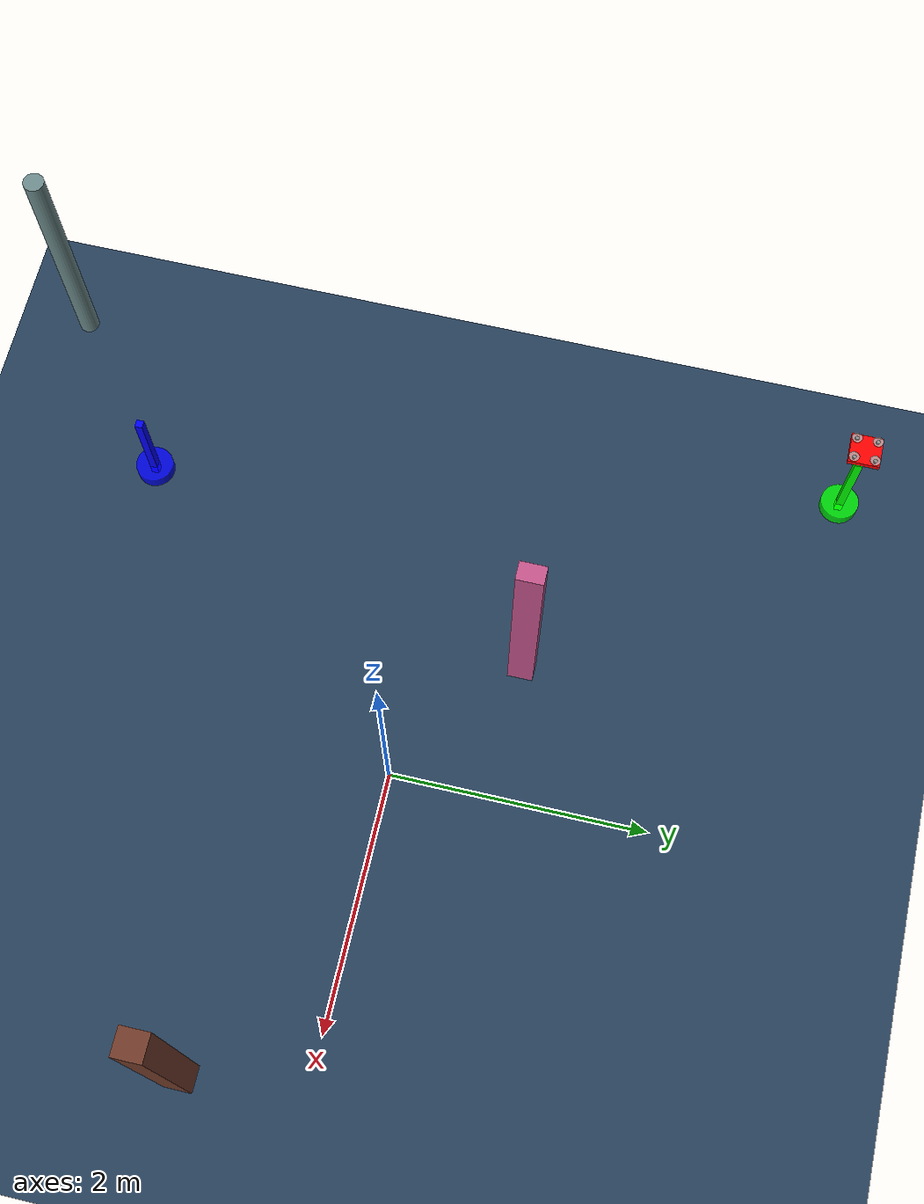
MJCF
<mujoco model="complex_uav_env">
  <compiler angle="degree" coordinate="local" inertiafromgeom="true"/>
  <option integrator="RK4" timestep="0.01"/>

  <visual>
    <headlight diffuse="0.6 0.6 0.6" ambient="0.3 0.3 0.3"/>
    <rgba haze="0.15 0.25 0.35 1"/>
    <global offwidth="2560" offheight="1440"/>
  </visual>

  <asset>
    <texture type="skybox" builtin="gradient" rgb1="0.3 0.5 0.7" rgb2="0 0 0" width="512" height="3072"/>
    <texture name="grid" type="2d" builtin="checker" rgb1="0.1 0.2 0.3" rgb2="0.2 0.3 0.4" width="512" height="512"/>
    <material name="grid" texture="grid" texrepeat="1 1" reflectance="0.2"/>
  </asset>

  <worldbody>
    <!-- Ground plane -->
    <geom name="ground" type="plane" size="4.0 4.0 0.1" material="grid"/>
    <light name="light1" pos="0 0 4" dir="0 0 -1" diffuse="1 1 1"/>

    <!-- Start position marker (green) -->
    <geom name="start_marker" type="cylinder" size="0.15 0.05" pos="-3.0 3.0 0.05" rgba="0 1 0 0.8"/>
    <geom name="start_pole" type="box" size="0.03 0.03 0.4" pos="-3.0 3.0 0.4" rgba="0 1 0 1"/>

    <!-- Goal position marker (blue) -->
    <geom name="goal_marker" type="cylinder" size="0.15 0.05" pos="-2.075159359392167 -2.469921130947491 0.05" rgba="0 0 1 0.8"/>
    <geom name="goal_pole" type="box" size="0.03 0.03 0.4" pos="-2.075159359392167 -2.469921130947491 0.4" rgba="0 0 1 1"/>

    <!-- UAV starting position -->
    <body name="chassis" pos="-3.0 3.0 1.0">
      <joint type="free" name="root"/>
      <geom type="box" size="0.12 0.12 0.02" rgba="1.0 0.0 0.0 1.0" mass="0.8"/>

      <!-- Propeller arms and motors -->
      <geom type="box" size="0.08 0.01 0.005" pos="0 0 0.01" rgba="0.3 0.3 0.3 1"/>
      <geom type="box" size="0.01 0.08 0.005" pos="0 0 0.01" rgba="0.3 0.3 0.3 1"/>

      <!-- Motor visual geometry -->
      <geom type="cylinder" size="0.015 0.02" pos="0.08 0.08 0.015" rgba="0.2 0.2 0.2 1"/>
      <geom type="cylinder" size="0.015 0.02" pos="-0.08 0.08 0.015" rgba="0.2 0.2 0.2 1"/>
      <geom type="cylinder" size="0.015 0.02" pos="0.08 -0.08 0.015" rgba="0.2 0.2 0.2 1"/>
      <geom type="cylinder" size="0.015 0.02" pos="-0.08 -0.08 0.015" rgba="0.2 0.2 0.2 1"/>

      <!-- Propellers -->
      <geom type="cylinder" size="0.04 0.002" pos="0.08 0.08 0.035" rgba="0.7 0.7 0.7 0.8"/>
      <geom type="cylinder" size="0.04 0.002" pos="-0.08 0.08 0.035" rgba="0.7 0.7 0.7 0.8"/>
      <geom type="cylinder" size="0.04 0.002" pos="0.08 -0.08 0.035" rgba="0.7 0.7 0.7 0.8"/>
      <geom type="cylinder" size="0.04 0.002" pos="-0.08 -0.08 0.035" rgba="0.7 0.7 0.7 0.8"/>

      <!-- Sites for motor force application -->
      <site name="motor1" pos="0.08 0.08 0" size="0.01"/>
      <site name="motor2" pos="-0.08 0.08 0" size="0.01"/>
      <site name="motor3" pos="0.08 -0.08 0" size="0.01"/>
      <site name="motor4" pos="-0.08 -0.08 0" size="0.01"/>
    </body>
    <geom name="test_obs_0" type="cylinder" size="0.0794496790557809 1.0" pos="-3.2535848347125635 -3.4131902904050486 1.0" rgba="0.4302371547134517 0.5457852135237056 0.5475862226231828 1.0"/>
    <geom name="test_obs_1" type="box" size="0.06933813713783692 0.09991537232513331 1.0" pos="-1.054556502015483 0.8037382827824235 1.0" rgba="0.7662993459395911 0.3318016484187557 0.5449003975983999 1.0"/>
    <geom name="test_obs_2" type="box" size="0.09927885743798474 0.10467791138067802 1.0" pos="2.5045641755673853 -0.9117327312625553 1.0" rgba="0.44074746447863633 0.2324618667177573 0.16390450054144756 1.0"/>
  </worldbody>

  <actuator>
    <motor name="m1" gear="0 0 1 0 0 0" site="motor1"/>
    <motor name="m2" gear="0 0 1 0 0 0" site="motor2"/>
    <motor name="m3" gear="0 0 1 0 0 0" site="motor3"/>
    <motor name="m4" gear="0 0 1 0 0 0" site="motor4"/>
  </actuator>
</mujoco>
